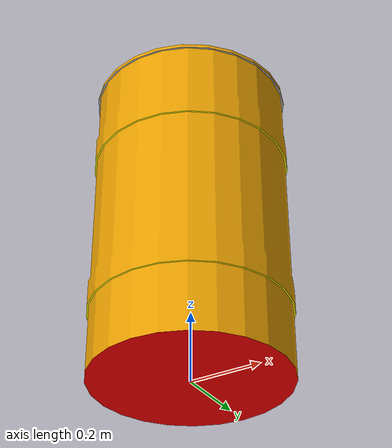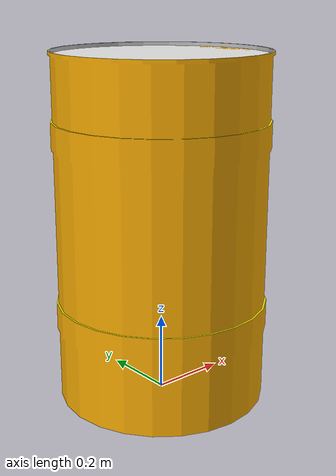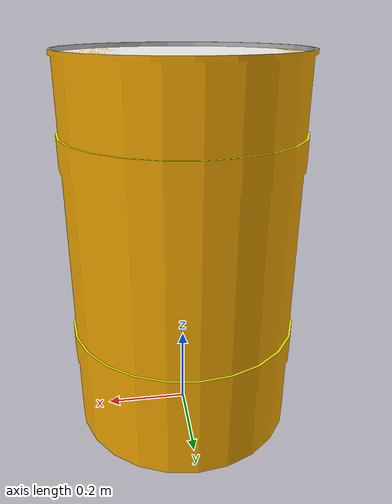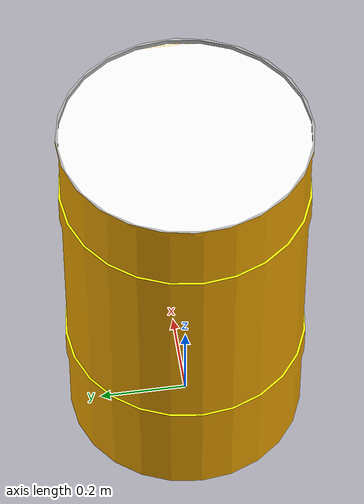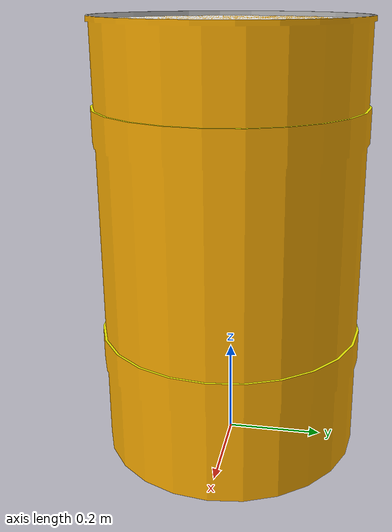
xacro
<?xml version="1.0"?>

<robot name="mobile_object" xmlns:xacro="http://ros.org/wiki/xacro">
  <xacro:property name="pi" value="3.1415926535897931" />
  <xacro:property name="h" value="2" />
  <xacro:property name="object" value="barrel" />
  <xacro:property name="mass" value="0.0001" />
  <xacro:property name="ixx" value="0.0001" />
  <xacro:property name="iyy" value="0.0001" />
  <xacro:property name="izz" value="0.0001" />
  <xacro:macro name="object_base_macro" params="name">
    <link name="${name}/base_link">
      <inertial>
        <!--mass value="1.477" /-->
        <mass value="${mass}"/>
        <origin xyz="0 0 0" />
        <inertia ixx="${ixx}" ixy="0.0" ixz="0.0" iyy="${iyy}" iyz="0.0" izz="${izz}" />
      </inertial>

      <visual>
        <origin rpy="0 0 0" xyz="0 0 0"/>
        <geometry>
          <mesh filename="package://mrsl_models/models/${object}/${object}.dae"/>
        </geometry>
      </visual>

      <collision>
        <origin rpy="0 0 0" xyz="0 0 0"/>
        <geometry>
          <mesh filename="package://mrsl_models/models/${object}/${object}.dae"/>
        </geometry>
      </collision>
    </link>

    <!-- Plugins -->
    <gazebo>
      <!-- Quad Dynamics Plugin -->
      <plugin name="mobile_${object}" filename="libmrsl_mobile_object.so">
        <vx>0.0</vx>
        <vy>1.0</vy>
        <w>0.0</w>
        <objectName>${name}</objectName>
        <topicName>pose</topicName>
        <updateRate>20.0</updateRate>
    </plugin>
   </gazebo>

  </xacro:macro>

  <xacro:object_base_macro name="mobile_${object}"/>
</robot>
